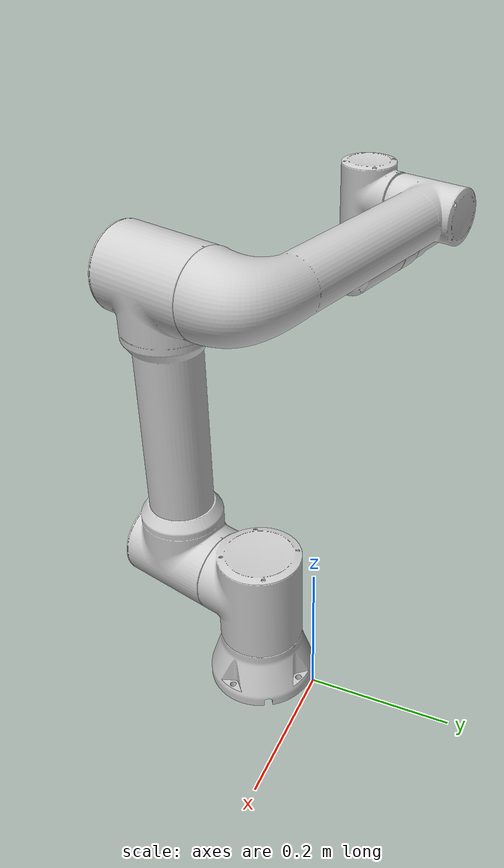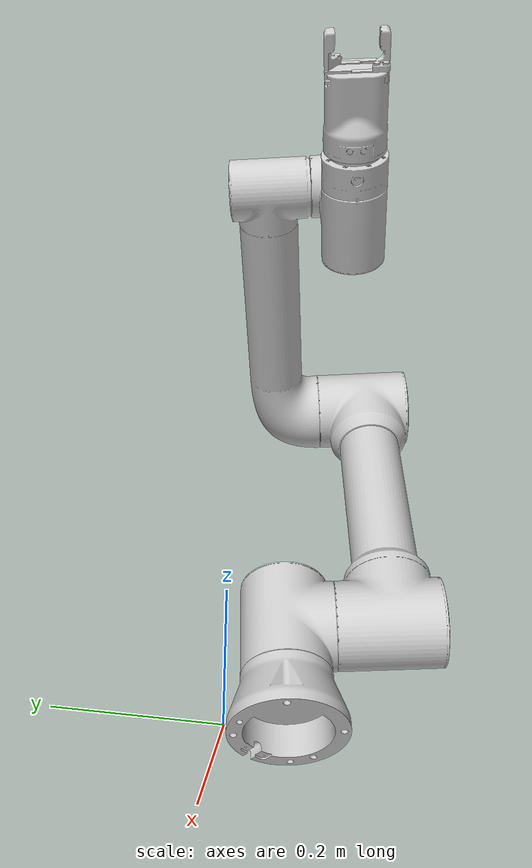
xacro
<?xml version="1.0"?>
<robot xmlns:xacro="http://www.ros.org/wiki/xacro" name="fr5_robot">
    <xacro:arg name="initial_positions_file" default="initial_positions.yaml" />

    <!-- Import fr5_robot urdf file -->
    <xacro:include filename="$(find sa_pkg)/urdf/fr5_robot.urdf.xacro" />

    <!-- Import control_xacro -->
    <xacro:include filename="fr5_robot.ros2_control.xacro" />

    <xacro:fr5_robot_ros2_control name="FakeSystem" initial_positions_file="$(arg initial_positions_file)"/>

</robot>

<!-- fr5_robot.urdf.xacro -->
<robot xmlns:xacro="http://www.ros.org/wiki/xacro" name="fr5_robot">

    <!-- Constants  -->
    <xacro:property name="PI" value="3.14159265359"/>

    <xacro:include filename="$(find sa_pkg)/urdf/fr5_robot_description.xacro"/>
    <xacro:include filename="$(find sa_pkg)/urdf/fr5_robot_ros2_control.xacro"/>

</robot>

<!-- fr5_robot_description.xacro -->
<robot xmlns:xacro="http://www.ros.org/wiki/xacro">

    <material name="white">
        <color rgba="0.8 0.8 0.8 1.0"/>
      </material>

      <!-- Contants -->
      <xacro:property name="PI" value="3.14159265359"/>

    <link name = "world"/>

    <!--  Joint between the world and base_link - prevents robot from falling-->
    <joint name="virtual_joint" type="fixed">
        <origin xyz="0.0 0.0 0.0" rpy="0.0 0.0 0.0"/>
        <parent link="world"/>
        <child link="base_link"/>
    </joint>

    <link name="base_link">
        <inertial>
            <origin xyz="0.00344430106272263 -0.07860899003720247 0.043085717488718915" rpy="0 0 0"/>
            <mass value="4.705646903566534"/>
            <inertia ixx="0.008986" iyy="0.008941" izz="0.013145" ixy="3.8e-05" iyz="-2.3e-05" ixz="-5.8e-05"/>
        </inertial>
        <visual>
            <origin xyz="0 0 0" rpy="0 0 0"/>
            <geometry>
                <mesh filename="package://sa_pkg/meshes/base_link.stl" scale="0.001 0.001 0.001"/>
            </geometry>
            <material name="white"/>
        </visual>
        <collision>
            <origin xyz="0 0 0" rpy="0 0 0"/>
            <geometry>
                <mesh filename="package://sa_pkg/meshes/base_link.stl" scale="0.001 0.001 0.001"/>
            </geometry>
        </collision>
    </link>

    <gazebo reference="base_link">
        <material>Gazebo/Grey</material>
        <kp>1000000.0</kp>
        <kd>100.0</kd>
        <mu1>0.7</mu1>
        <mu2>0.7</mu2>
    </gazebo>

    <link name="Base2">
        <inertial>
            <origin xyz="-0.0008562662419486543 -0.0037392284022613465 0.07218692821064043" rpy="0 0 0"/>
            <mass value="12.703398553828709"/>
            <inertia ixx="0.032296" iyy="0.03147" izz="0.023715" ixy="-0.000226" iyz="0.00027" ixz="5.7e-05"/>
        </inertial>
        <visual>
            <origin xyz="-0.0039 0.078296 -0.075621" rpy="0 0 0"/>
            <geometry>
                <mesh filename="package://sa_pkg/meshes/Base2.stl" scale="0.001 0.001 0.001"/>
            </geometry>
            <material name="white"/>
        </visual>
        <collision>
            <origin xyz="-0.0039 0.078296 -0.075621" rpy="0 0 0"/>
            <geometry>
                <mesh filename="package://sa_pkg/meshes/Base2.stl" scale="0.001 0.001 0.001"/>
            </geometry>
        </collision>
    </link>

    <gazebo reference="Base2">
        <material>Gazebo/Grey</material>
        <kp>1000000.0</kp>
        <kd>100.0</kd>
        <mu1>0.7</mu1>
        <mu2>0.7</mu2>
    </gazebo>

    <link name="Link1">
        <inertial>
            <origin xyz="-0.0180731930163383 -0.07157463609878126 0.21277250495980113" rpy="0 0 0"/>
            <mass value="42.03673114804175"/>
            <inertia ixx="1.32438" iyy="1.30868" izz="0.082566" ixy="-0.004323" iyz="-0.003933" ixz="-0.002783"/>
        </inertial>
        <visual>
            <origin xyz="0.011093 0.137129 -0.153844" rpy="0 0 0"/>
            <geometry>
                <mesh filename="package://sa_pkg/meshes/Link1.stl" scale="0.001 0.001 0.001"/>
            </geometry>
            <material name="white"/>
        </visual>
        <collision>
            <origin xyz="0.011093 0.137129 -0.153844" rpy="0 0 0"/>
            <geometry>
                <mesh filename="package://sa_pkg/meshes/Link1.stl" scale="0.001 0.001 0.001"/>
            </geometry>
        </collision>
    </link>
    <gazebo reference="Link1">
        <material>Gazebo/Grey</material>
        <kp>1000000.0</kp>
        <kd>100.0</kd>
        <mu1>0.7</mu1>
        <mu2>0.7</mu2>
    </gazebo>
    <link name="Link2">
        <inertial>
            <origin xyz="-0.16843673107287727 0.09935026115949067 5.9367849019831276e-05" rpy="0 0 0"/>
            <mass value="22.30207037010936"/>
            <inertia ixx="0.063956" iyy="0.454292" izz="0.496917" ixy="0.131054" iyz="-0.000158" ixz="0.000553"/>
        </inertial>
        <visual>
            <origin xyz="0.010137 0.135762 -0.578841" rpy="0 0 0"/>
            <geometry>
                <mesh filename="package://sa_pkg/meshes/Link2.stl" scale="0.001 0.001 0.001"/>
            </geometry>
            <material name="white"/>
        </visual>
        <collision>
            <origin xyz="0.010137 0.135762 -0.578841" rpy="0 0 0"/>
            <geometry>
                <mesh filename="package://sa_pkg/meshes/Link2.stl" scale="0.001 0.001 0.001"/>
            </geometry>
        </collision>
    </link>
    <gazebo reference="Link2">
        <material>Gazebo/Grey</material>
        <kp>1000000.0</kp>
        <kd>100.0</kd>
        <mu1>0.7</mu1>
        <mu2>0.7</mu2>
    </gazebo>
    <link name="Link3">
        <inertial>
            <origin xyz="-0.011101869591843672 -0.042430035740096884 -0.0032811471837386197" rpy="0 0 0"/>
            <mass value="4.720500726824531"/>
            <inertia ixx="0.00645" iyy="0.006014" izz="0.004483" ixy="-0.00012" iyz="-9.2e-05" ixz="-2.6e-05"/>
        </inertial>
        <visual>
            <origin xyz="0.392041 0.03482 -0.579376" rpy="0 0 0"/>
            <geometry>
                <mesh filename="package://sa_pkg/meshes/Link3.stl" scale="0.001 0.001 0.001"/>
            </geometry>
            <material name="white"/>
        </visual>
        <collision>
            <origin xyz="0.392041 0.03482 -0.579376" rpy="0 0 0"/>
            <geometry>
                <mesh filename="package://sa_pkg/meshes/Link3.stl" scale="0.001 0.001 0.001"/>
            </geometry>
        </collision>
    </link>

    <gazebo reference="Link3">
        <material>Gazebo/Grey</material>
        <kp>1000000.0</kp>
        <kd>100.0</kd>
        <mu1>0.7</mu1>
        <mu2>0.7</mu2>
    </gazebo>

    <link name="Link4">
        <inertial>
            <origin xyz="-0.00392206453430638 0.0008508109977091727 -0.04124459888304666" rpy="0 0 0"/>
            <mass value="4.588715804955936"/>
            <inertia ixx="0.004321" iyy="0.00607" izz="0.00589" ixy="0.000481" iyz="1.5e-05" ixz="-6.4e-05"/>
        </inertial>
        <visual>
            <origin xyz="0.404497 0.082224 -0.521757" rpy="0 0 0"/>
            <geometry>
                <mesh filename="package://sa_pkg/meshes/Link4.stl" scale="0.001 0.001 0.001"/>
            </geometry>
            <material name="white"/>
        </visual>
        <collision>
            <origin xyz="0.404497 0.082224 -0.521757" rpy="0 0 0"/>
            <geometry>
                <mesh filename="package://sa_pkg/meshes/Link4.stl" scale="0.001 0.001 0.001"/>
            </geometry>
        </collision>
    </link>

    <gazebo reference="Link4">
        <material>Gazebo/Grey</material>
        <kp>1000000.0</kp>
        <kd>100.0</kd>
        <mu1>0.7</mu1>
        <mu2>0.7</mu2>
    </gazebo>

    <link name="Link5">
        <inertial>
            <origin xyz="-0.01854043192068222 0.00468045115966674 4.470898721870009e-05" rpy="0 0 0"/>
            <mass value="1.5275986719750236"/>
            <inertia ixx="0.001184" iyy="0.000831" izz="0.000809" ixy="-9.8e-05" iyz="0.0" ixz="-1e-06"/>
        </inertial>
        <visual>
            <origin xyz="0.46097 0.067896 -0.476837" rpy="0 0 0"/>
            <geometry>
                <mesh filename="package://sa_pkg/meshes/Link5.stl" scale="0.001 0.001 0.001"/>
            </geometry>
            <material name="white"/>
        </visual>
        <collision>
            <origin xyz="0.46097 0.067896 -0.476837" rpy="0 0 0"/>
            <geometry>
                <mesh filename="package://sa_pkg/meshes/Link5.stl" scale="0.001 0.001 0.001"/>
            </geometry>
        </collision>
    </link>

    <gazebo reference="Link5">
        <material>Gazebo/Grey</material>
        <kp>1000000.0</kp>
        <kd>100.0</kd>
        <mu1>0.7</mu1>
        <mu2>0.7</mu2>
    </gazebo>

    <link name="Gripper_Base">
        <inertial>
            <origin xyz="-0.041639156063759564 0.010756927704983654 6.14949019796529e-05" rpy="0 0 0"/>
            <mass value="2.6889062067064198"/>
            <inertia ixx="0.001767" iyy="0.002575" izz="0.002857" ixy="0.000217" iyz="-7e-06" ixz="-0.0"/>
        </inertial>
        <visual>
            <origin xyz="0.501651 0.057451 -0.476895" rpy="0 0 0"/>
            <geometry>
                <mesh filename="package://sa_pkg/meshes/Gripper_Base.stl" scale="0.001 0.001 0.001"/>
            </geometry>
            <material name="white"/>
        </visual>
        <collision>
            <origin xyz="0.501651 0.057451 -0.476895" rpy="0 0 0"/>
            <geometry>
                <mesh filename="package://sa_pkg/meshes/Gripper_Base.stl" scale="0.001 0.001 0.001"/>
            </geometry>
        </collision>
    </link>
    <gazebo reference="Gripper_Base">
        <material>Gazebo/Grey</material>
        <kp>1000000.0</kp>
        <kd>100.0</kd>
        <mu1>0.7</mu1>
        <mu2>0.7</mu2>
    </gazebo>

    <link name="Gripper1">
        <inertial>
            <origin xyz="-0.01869703186265992 0.016387001617356352 0.00624617966194746" rpy="0 0 0"/>
            <mass value="0.11665826251243909"/>
            <inertia ixx="1.6e-05" iyy="4.2e-05" izz="4.6e-05" ixy="-7e-06" iyz="2e-06" ixz="1e-05"/>
        </inertial>
        <visual>
            <origin xyz="0.589516 0.070265 -0.463163" rpy="0 0 0"/>
            <geometry>
                <mesh filename="package://sa_pkg/meshes/Gripper1.stl" scale="0.001 0.001 0.001"/>
            </geometry>
            <material name="white"/>
        </visual>
        <collision>
            <origin xyz="0.589516 0.070265 -0.463163" rpy="0 0 0"/>
            <geometry>
                <mesh filename="package://sa_pkg/meshes/Gripper1.stl" scale="0.001 0.001 0.001"/>
            </geometry>
        </collision>
    </link>

    <gazebo reference="Gripper1">
        <material>Gazebo/Red</material>
        <kp>1000000.0</kp>
        <kd>100.0</kd>
        <mu1>0.7</mu1>
        <mu2>0.7</mu2>
    </gazebo>

    <link name="Gripper2">
        <inertial>
            <origin xyz="-0.024295167975335485 -0.005349152028662122 -0.006184264364863468" rpy="0 0 0"/>
            <mass value="0.11665836475124194"/>
            <inertia ixx="2.8e-05" iyy="3e-05" izz="4.6e-05" ixy="1.5e-05" iyz="7e-06" ixz="-8e-06"/>
        </inertial>
        <visual>
            <origin xyz="0.572439 0.003904 -0.490853" rpy="0 0 0"/>
            <geometry>
                <mesh filename="package://sa_pkg/meshes/Gripper2.stl" scale="0.001 0.001 0.001"/>
            </geometry>
            <material name="white"/>
        </visual>
        <collision>
            <origin xyz="0.572439 0.003904 -0.490853" rpy="0 0 0"/>
            <geometry>
                <mesh filename="package://sa_pkg/meshes/Gripper2.stl" scale="0.001 0.001 0.001"/>
            </geometry>
        </collision>
    </link>

    <gazebo reference="Gripper2">
        <material>Gazebo/Red</material>
        <kp>1000000.0</kp>
        <kd>100.0</kd>
        <mu1>0.7</mu1>
        <mu2>0.7</mu2>
    </gazebo>

    <joint name="Joint1" type="revolute">
        <origin xyz="0.0039 -0.078296 0.075621" rpy="0 0 0"/>
        <parent link="base_link"/>
        <child link="Base2"/>
        <axis xyz="0.002251 0.003216 0.999992"/>
        <limit upper="${PI}" lower="${-PI}" effort="100" velocity="100"/>
    </joint>

    <joint name="Joint2" type="revolute">
        <origin xyz="-0.014993 -0.058833 0.078223" rpy="0 0 0"/>
        <parent link="Base2"/>
        <child link="Link1"/>
        <axis xyz="-0.248671 -0.968581 0.003674"/>
        <limit upper="${PI}" lower="${-PI}" effort="100" velocity="100"/>
    </joint>

    <joint name="Joint3" type="revolute">
        <origin xyz="0.000956 0.001367 0.424997" rpy="0 0 0"/>
        <parent link="Link1"/>
        <child link="Link2"/>
        <axis xyz="0.248671 0.968581 -0.003674"/>
        <limit upper="${PI}" lower="${-PI}" effort="100" velocity="100"/>
    </joint>

    <joint name="Joint4" type="revolute">
        <origin xyz="-0.381904 0.100942 0.000535" rpy="0 0 0"/>
        <parent link="Link2"/>
        <child link="Link3"/>
        <axis xyz="-0.248671 -0.968581 0.003674"/>
        <limit upper="${PI}" lower="${-PI}" effort="100" velocity="100"/>
    </joint>

    <joint name="Joint5" type="revolute">
        <origin xyz="-0.012456 -0.047404 -0.057619" rpy="0 0 0"/>
        <parent link="Link3"/>
        <child link="Link4"/>
        <axis xyz="-0.002251 -0.003216 -0.999992"/>
        <limit upper="${PI}" lower="${-PI}" effort="100" velocity="100"/>
    </joint>

    <joint name="Joint6" type="revolute">
        <origin xyz="-0.056473 0.014328 -0.04492" rpy="0 0 0"/>
        <parent link="Link4"/>
        <child link="Link5"/>
        <axis xyz="-0.968585 0.248677 0.00138"/>
        <limit upper="${PI}" lower="${-PI}" effort="100" velocity="100"/>
    </joint>

    <joint name="Rigid1" type="fixed">
        <origin xyz="-0.040681 0.010445 5.8e-05" rpy="0 0 0"/>
        <parent link="Link5"/>
        <child link="Gripper_Base"/>
    </joint>

    <joint name="Slider_driver" type="prismatic">
        <origin xyz="-0.087865 -0.012814 -0.013732" rpy="0 0 0"/>
        <parent link="Gripper_Base"/>
        <child link="Gripper1"/>
        <axis xyz="0.248603 0.968124 0.030527"/>
        <limit upper="0.02" lower="-0.02" effort="100" velocity="100"/>
    </joint>

    <joint name="Slider_driven" type="prismatic">
        <origin xyz="-0.070788 0.053547 0.013958" rpy="0 0 0"/>
        <parent link="Gripper_Base"/>
        <child link="Gripper2"/>
        <axis xyz="0.248603 0.968124 0.030527"/>
        <limit upper="0.02" lower="-0.02" effort="100" velocity="100"/>
        <mimic joint = "Slider_driver" multiplier = "-1"/>
    </joint>

</robot>
